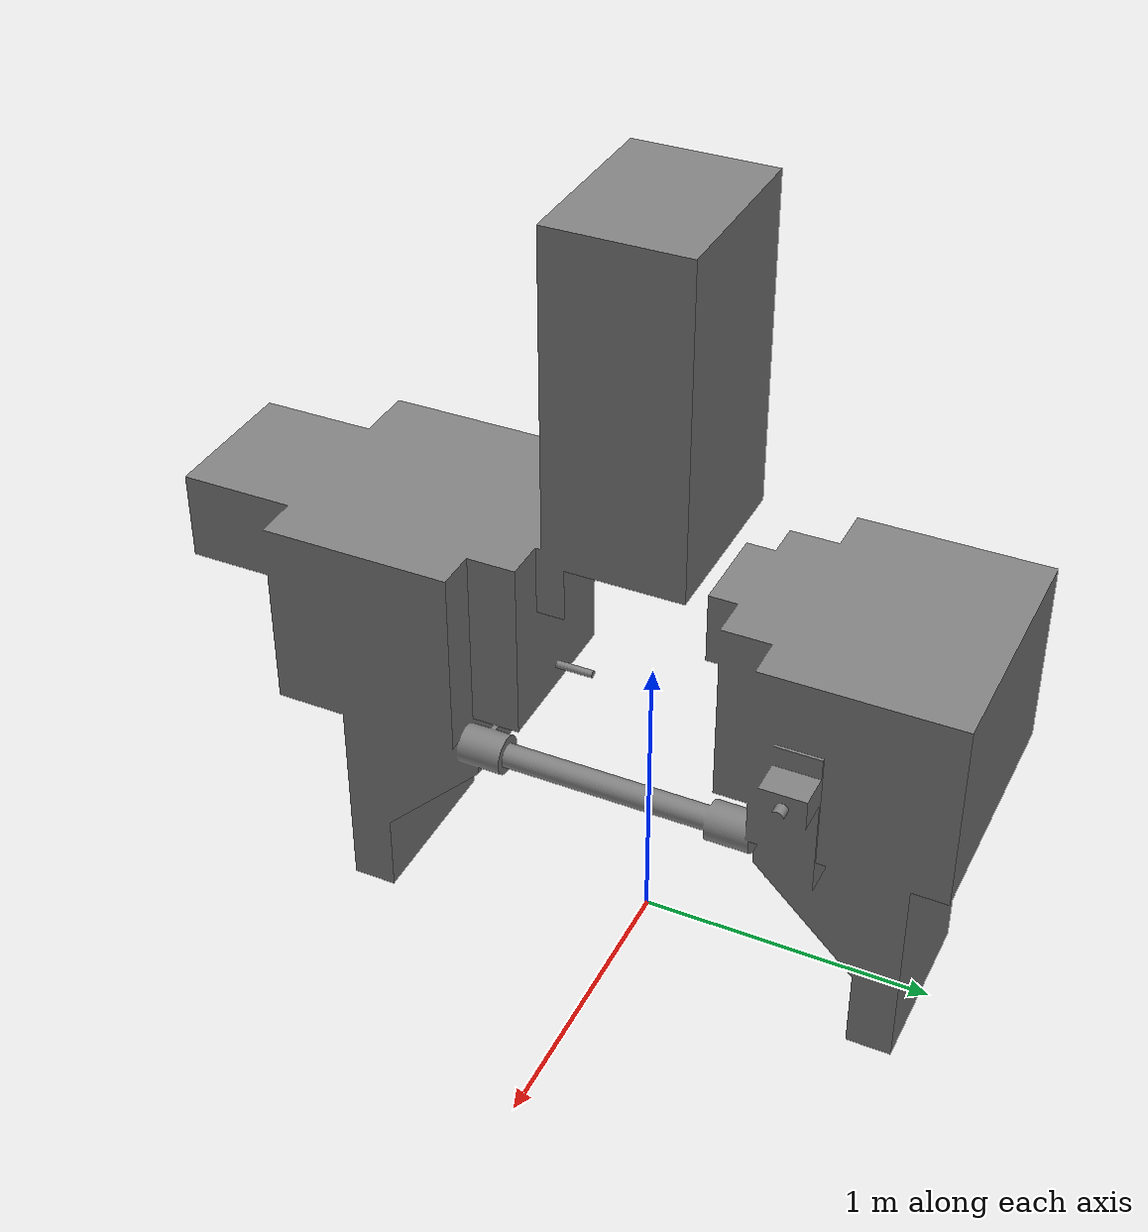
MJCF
<mujoco model="core_maker">
    <compiler angle="radian" meshdir="meshes" autolimits="true"/>

    <option integrator="implicitfast"/>

    <default>
        <default class="visual">
        <geom group="2" type="mesh" contype="0" conaffinity="0" density="0"/>
        </default>
        <default class="collision">
        <geom group="3" type="mesh" density="2700"/>
        </default>
    </default>

    <asset>
        <mesh name="machine_body" file="core_maker.stl" scale="0.001 0.001 0.001"/>
        <mesh name="collision_body" file="core_maker.stl" scale="0.001 0.001 0.001"/>
    </asset>
    <worldbody>
        <body name="body">
            <geom mesh="machine_body" class="visual"/>
        </body>
    </worldbody>
</mujoco>
